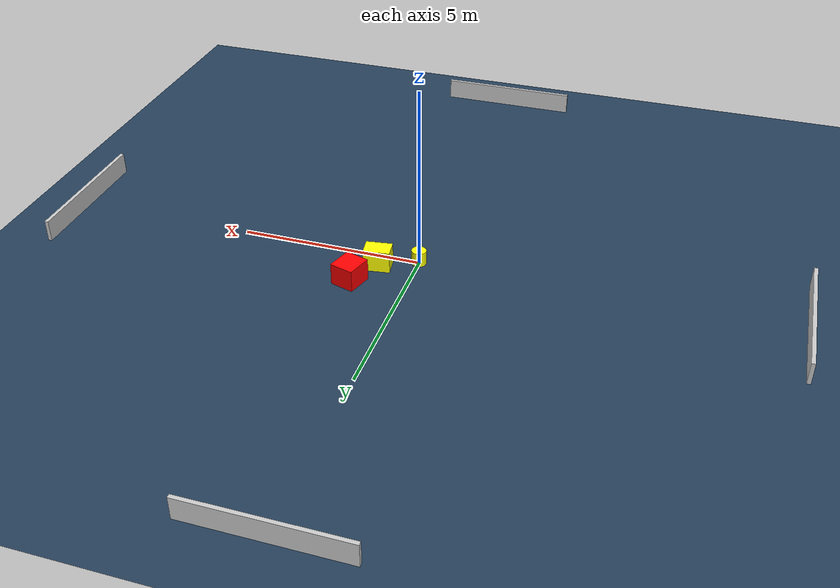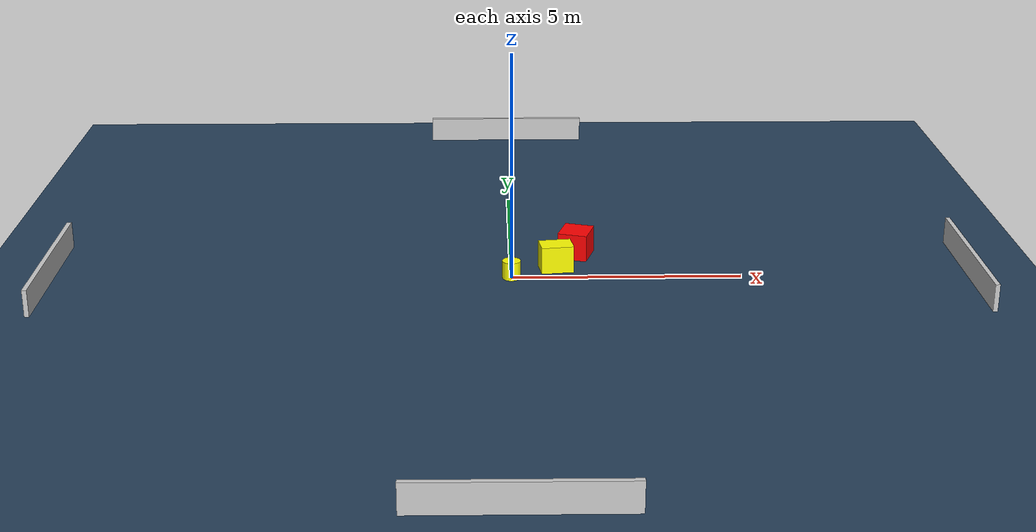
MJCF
<?xml version="1.0" ?>
<mujoco model="generated_environment">
  <option timestep="0.01" integrator="RK4" cone="elliptic"/>
  <default>
    <geom density="1"/>
  </default>
  <asset>
    <texture builtin="gradient" height="3072" name="skybox" rgb1="0.3 0.5 0.7" rgb2="0 0 0" type="skybox" width="512"/>
    <texture builtin="checker" height="300" name="groundplane" rgb1="0.2 0.3 0.4" rgb2="0.1 0.2 0.3" type="2d" width="300"/>
    <material name="groundplane" reflectance="0.2" texrepeat="5 5" texture="groundplane"/>
  </asset>
  <worldbody>
    <light dir="0 0 -1" directional="true" pos="0 0 1.5"/>
    <geom condim="3" friction="0.5 0.005 0.001" material="groundplane" name="floor" pos="0 0 0" size="0 0 0.05" type="plane"/>
    <body name="walls">
      <geom name="wall_1" condim="4" pos="-10.0 0.0 0.3" rgba="0.800000011920929 0.800000011920929 0.800000011920929 1.0" size="0.05 2.0 0.3" type="box"/>
      <geom name="wall_2" condim="4" pos="10.0 0.0 0.3" rgba="0.800000011920929 0.800000011920929 0.800000011920929 1.0" size="0.05 2.0 0.3" type="box"/>
      <geom name="wall_3" condim="4" pos="0.0 -10.0 0.3" rgba="0.800000011920929 0.800000011920929 0.800000011920929 1.0" size="2.0 0.05 0.3" type="box"/>
      <geom name="wall_4" condim="4" pos="0.0 10.0 0.3" rgba="0.800000011920929 0.800000011920929 0.800000011920929 1.0" size="2.0 0.05 0.3" type="box"/>
    </body>
    <body name="robot">
      <joint name="joint_x" type="slide" pos="0 0 0" axis="1 0 0"/>
      <joint name="joint_y" type="slide" pos="0 0 0" axis="0 1 0"/>
      <geom name="robot" type="cylinder" pos="0.0 0.0 0.2" size="0.2 0.2 0.0" mass="5.0" friction="1.0 0.005 0.0001" condim="4" rgba="1.0 1.0 0.0 1.0"/>
    </body>
    <body name="obstacle_1_movable">
      <geom name="obstacle_1_movable" condim="4" pos="0.9854491394338076 0.4826076542942789 0.3" euler="0 0 187.67549760648174" friction="0.0 0.005 0.001" rgba="1.0 1.0 0.0 1.0" size="0.3562993757057912 0.2469888106037784 0.3" type="box" mass="0.1"/>
      <joint type="free"/>
    </body>
    <body name="obstacle_2_static">
      <geom name="obstacle_2_static" condim="4" pos="1.4648070986162567 1.338857997336057 0.3" euler="0 0 73.00377816340563" friction="0.0 0.005 0.001" rgba="1.0 0.0 0.0 1.0" size="0.35378718441345813 0.3296208159771233 0.3" type="box"/>
    </body>
  </worldbody>
  <actuator>
    <motor name="actuator_x" joint="joint_x" gear="1" ctrlrange="-1 1"/>
    <motor name="actuator_y" joint="joint_y" gear="1" ctrlrange="-1 1"/>
  </actuator>
</mujoco>
